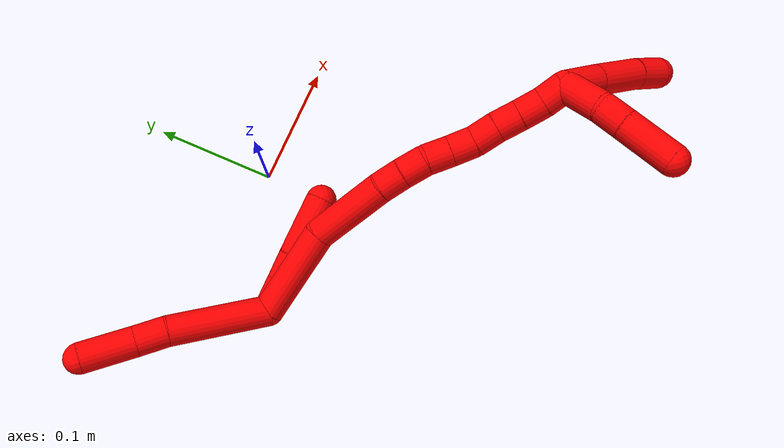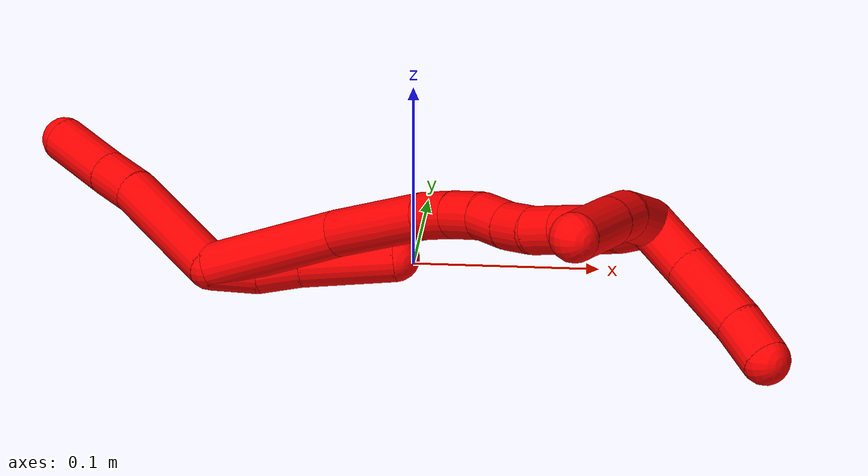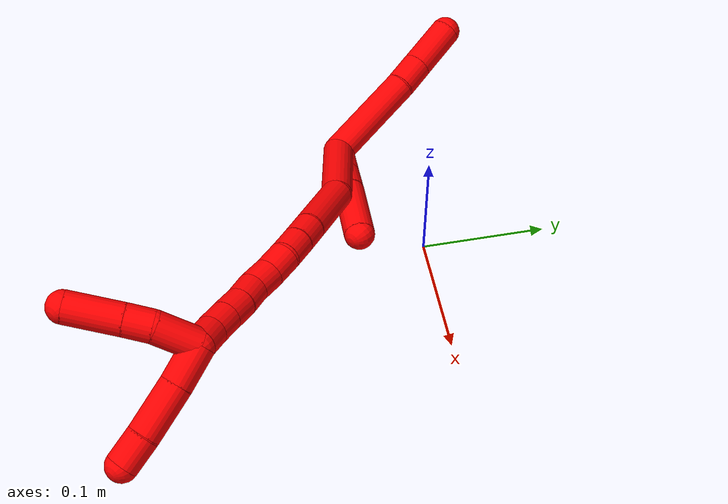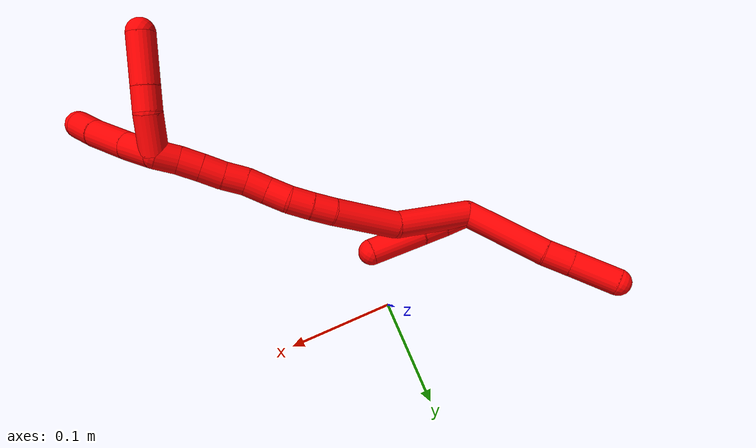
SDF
<sdf version="1.7">
 <world name="default">
  <model name="2">
   <static>0</static>
   <link name="2">
    <collision name="collision-cylinder-e_1_2_8">
     <pose>0.010587 0.007688 -0.03846 -2.9443 0.263651 -1.85923</pose>
     <geometry><cylinder><radius>0.0125</radius><length>0.081249</length></cylinder></geometry>
     <surface>
      <friction><ode><mu>1.16</mu><mu2>1.16</mu2><slip1>0</slip1><slip2>0</slip2></ode></friction>
      <contact><ode><kp>1e+06</kp><kd>1</kd><max_vel>0</max_vel><min_depth>0.001</min_depth></ode></contact>
     </surface>
    </collision>
    <visual name="visual-cylinder-e_1_2_8">
     <pose>0.010587 0.007688 -0.03846 -2.9443 0.263651 -1.85923</pose>
     <geometry><cylinder><radius>0.0125</radius><length>0.081249</length></cylinder></geometry>
     <material><ambient>1 0 0 1</ambient></material>
    </visual>
    <collision name="collision-cylinder-e_2_8_9">
     <pose>0.022845 0.017921 -0.089084 -2.93529 0.133655 -1.14784</pose>
     <geometry><cylinder><radius>0.0125</radius><length>0.025081</length></cylinder></geometry>
     <surface>
      <friction><ode><mu>1.16</mu><mu2>1.16</mu2><slip1>0</slip1><slip2>0</slip2></ode></friction>
      <contact><ode><kp>1e+06</kp><kd>1</kd><max_vel>0</max_vel><min_depth>0.001</min_depth></ode></contact>
     </surface>
    </collision>
    <visual name="visual-cylinder-e_2_8_9">
     <pose>0.022845 0.017921 -0.089084 -2.93529 0.133655 -1.14784</pose>
     <geometry><cylinder><radius>0.0125</radius><length>0.025081</length></cylinder></geometry>
     <material><ambient>1 0 0 1</ambient></material>
    </visual>
    <collision name="collision-cylinder-e_3_9_6">
     <pose>0.028103 0.025139 -0.122275 -2.92297 0.164996 -1.29134</pose>
     <geometry><cylinder><radius>0.0125</radius><length>0.043671</length></cylinder></geometry>
     <surface>
      <friction><ode><mu>1.16</mu><mu2>1.16</mu2><slip1>0</slip1><slip2>0</slip2></ode></friction>
      <contact><ode><kp>1e+06</kp><kd>1</kd><max_vel>0</max_vel><min_depth>0.001</min_depth></ode></contact>
     </surface>
    </collision>
    <visual name="visual-cylinder-e_3_9_6">
     <pose>0.028103 0.025139 -0.122275 -2.92297 0.164996 -1.29134</pose>
     <geometry><cylinder><radius>0.0125</radius><length>0.043671</length></cylinder></geometry>
     <material><ambient>1 0 0 1</ambient></material>
    </visual>
    <collision name="collision-cylinder-e_1_2_10">
     <pose>0.006034 -0.007577 0.008119 0.750843 0.497711 0.199641</pose>
     <geometry><cylinder><radius>0.0125</radius><length>0.025277</length></cylinder></geometry>
     <surface>
      <friction><ode><mu>1.16</mu><mu2>1.16</mu2><slip1>0</slip1><slip2>0</slip2></ode></friction>
      <contact><ode><kp>1e+06</kp><kd>1</kd><max_vel>0</max_vel><min_depth>0.001</min_depth></ode></contact>
     </surface>
    </collision>
    <visual name="visual-cylinder-e_1_2_10">
     <pose>0.006034 -0.007577 0.008119 0.750843 0.497711 0.199641</pose>
     <geometry><cylinder><radius>0.0125</radius><length>0.025277</length></cylinder></geometry>
     <material><ambient>1 0 0 1</ambient></material>
    </visual>
    <collision name="collision-cylinder-e_2_10_11">
     <pose>0.019366 -0.019777 0.024245 0.523733 0.668203 0.185534</pose>
     <geometry><cylinder><radius>0.0125</radius><length>0.023558</length></cylinder></geometry>
     <surface>
      <friction><ode><mu>1.16</mu><mu2>1.16</mu2><slip1>0</slip1><slip2>0</slip2></ode></friction>
      <contact><ode><kp>1e+06</kp><kd>1</kd><max_vel>0</max_vel><min_depth>0.001</min_depth></ode></contact>
     </surface>
    </collision>
    <visual name="visual-cylinder-e_2_10_11">
     <pose>0.019366 -0.019777 0.024245 0.523733 0.668203 0.185534</pose>
     <geometry><cylinder><radius>0.0125</radius><length>0.023558</length></cylinder></geometry>
     <material><ambient>1 0 0 1</ambient></material>
    </visual>
    <collision name="collision-cylinder-e_3_11_5">
     <pose>0.041076 -0.036296 0.049723 0.597735 0.598454 0.18952</pose>
     <geometry><cylinder><radius>0.0125</radius><length>0.051165</length></cylinder></geometry>
     <surface>
      <friction><ode><mu>1.16</mu><mu2>1.16</mu2><slip1>0</slip1><slip2>0</slip2></ode></friction>
      <contact><ode><kp>1e+06</kp><kd>1</kd><max_vel>0</max_vel><min_depth>0.001</min_depth></ode></contact>
     </surface>
    </collision>
    <visual name="visual-cylinder-e_3_11_5">
     <pose>0.041076 -0.036296 0.049723 0.597735 0.598454 0.18952</pose>
     <geometry><cylinder><radius>0.0125</radius><length>0.051165</length></cylinder></geometry>
     <material><ambient>1 0 0 1</ambient></material>
    </visual>
    <collision name="collision-cylinder-e_1_2_12">
     <pose>0.022699 -0.006643 0.029591 0.22083 0.642526 0.073757</pose>
     <geometry><cylinder><radius>0.0125</radius><length>0.075763</length></cylinder></geometry>
     <surface>
      <friction><ode><mu>1.16</mu><mu2>1.16</mu2><slip1>0</slip1><slip2>0</slip2></ode></friction>
      <contact><ode><kp>1e+06</kp><kd>1</kd><max_vel>0</max_vel><min_depth>0.001</min_depth></ode></contact>
     </surface>
    </collision>
    <visual name="visual-cylinder-e_1_2_12">
     <pose>0.022699 -0.006643 0.029591 0.22083 0.642526 0.073757</pose>
     <geometry><cylinder><radius>0.0125</radius><length>0.075763</length></cylinder></geometry>
     <material><ambient>1 0 0 1</ambient></material>
    </visual>
    <collision name="collision-cylinder-e_2_12_13">
     <pose>0.057166 -0.012398 0.087946 -0.030869 0.388169 -0.006068</pose>
     <geometry><cylinder><radius>0.0125</radius><length>0.062181</length></cylinder></geometry>
     <surface>
      <friction><ode><mu>1.16</mu><mu2>1.16</mu2><slip1>0</slip1><slip2>0</slip2></ode></friction>
      <contact><ode><kp>1e+06</kp><kd>1</kd><max_vel>0</max_vel><min_depth>0.001</min_depth></ode></contact>
     </surface>
    </collision>
    <visual name="visual-cylinder-e_2_12_13">
     <pose>0.057166 -0.012398 0.087946 -0.030869 0.388169 -0.006068</pose>
     <geometry><cylinder><radius>0.0125</radius><length>0.062181</length></cylinder></geometry>
     <material><ambient>1 0 0 1</ambient></material>
    </visual>
    <collision name="collision-cylinder-e_3_13_14">
     <pose>0.071771 -0.011723 0.126655 0.021487 0.277791 0.003004</pose>
     <geometry><cylinder><radius>0.0125</radius><length>0.020687</length></cylinder></geometry>
     <surface>
      <friction><ode><mu>1.16</mu><mu2>1.16</mu2><slip1>0</slip1><slip2>0</slip2></ode></friction>
      <contact><ode><kp>1e+06</kp><kd>1</kd><max_vel>0</max_vel><min_depth>0.001</min_depth></ode></contact>
     </surface>
    </collision>
    <visual name="visual-cylinder-e_3_13_14">
     <pose>0.071771 -0.011723 0.126655 0.021487 0.277791 0.003004</pose>
     <geometry><cylinder><radius>0.0125</radius><length>0.020687</length></cylinder></geometry>
     <material><ambient>1 0 0 1</ambient></material>
    </visual>
    <collision name="collision-cylinder-e_4_14_15">
     <pose>0.076787 -0.012287 0.146662 0.034777 0.213181 0.003721</pose>
     <geometry><cylinder><radius>0.0125</radius><length>0.020604</length></cylinder></geometry>
     <surface>
      <friction><ode><mu>1.16</mu><mu2>1.16</mu2><slip1>0</slip1><slip2>0</slip2></ode></friction>
      <contact><ode><kp>1e+06</kp><kd>1</kd><max_vel>0</max_vel><min_depth>0.001</min_depth></ode></contact>
     </surface>
    </collision>
    <visual name="visual-cylinder-e_4_14_15">
     <pose>0.076787 -0.012287 0.146662 0.034777 0.213181 0.003721</pose>
     <geometry><cylinder><radius>0.0125</radius><length>0.020604</length></cylinder></geometry>
     <material><ambient>1 0 0 1</ambient></material>
    </visual>
    <collision name="collision-cylinder-e_5_15_16">
     <pose>0.078818 -0.013623 0.166915 0.096439 -0.014469 -0.000698</pose>
     <geometry><cylinder><radius>0.0125</radius><length>0.020478</length></cylinder></geometry>
     <surface>
      <friction><ode><mu>1.16</mu><mu2>1.16</mu2><slip1>0</slip1><slip2>0</slip2></ode></friction>
      <contact><ode><kp>1e+06</kp><kd>1</kd><max_vel>0</max_vel><min_depth>0.001</min_depth></ode></contact>
     </surface>
    </collision>
    <visual name="visual-cylinder-e_5_15_16">
     <pose>0.078818 -0.013623 0.166915 0.096439 -0.014469 -0.000698</pose>
     <geometry><cylinder><radius>0.0125</radius><length>0.020478</length></cylinder></geometry>
     <material><ambient>1 0 0 1</ambient></material>
    </visual>
    <collision name="collision-cylinder-e_6_16_17">
     <pose>0.079496 -0.014491 0.187124 -0.011788 0.082281 -0.000485</pose>
     <geometry><cylinder><radius>0.0125</radius><length>0.020108</length></cylinder></geometry>
     <surface>
      <friction><ode><mu>1.16</mu><mu2>1.16</mu2><slip1>0</slip1><slip2>0</slip2></ode></friction>
      <contact><ode><kp>1e+06</kp><kd>1</kd><max_vel>0</max_vel><min_depth>0.001</min_depth></ode></contact>
     </surface>
    </collision>
    <visual name="visual-cylinder-e_6_16_17">
     <pose>0.079496 -0.014491 0.187124 -0.011788 0.082281 -0.000485</pose>
     <geometry><cylinder><radius>0.0125</radius><length>0.020108</length></cylinder></geometry>
     <material><ambient>1 0 0 1</ambient></material>
    </visual>
    <collision name="collision-cylinder-e_7_17_18">
     <pose>0.083037 -0.014646 0.206843 0.028199 0.272759 0.00387</pose>
     <geometry><cylinder><radius>0.0125</radius><length>0.020151</length></cylinder></geometry>
     <surface>
      <friction><ode><mu>1.16</mu><mu2>1.16</mu2><slip1>0</slip1><slip2>0</slip2></ode></friction>
      <contact><ode><kp>1e+06</kp><kd>1</kd><max_vel>0</max_vel><min_depth>0.001</min_depth></ode></contact>
     </surface>
    </collision>
    <visual name="visual-cylinder-e_7_17_18">
     <pose>0.083037 -0.014646 0.206843 0.028199 0.272759 0.00387</pose>
     <geometry><cylinder><radius>0.0125</radius><length>0.020151</length></cylinder></geometry>
     <material><ambient>1 0 0 1</ambient></material>
    </visual>
    <collision name="collision-cylinder-e_8_18_19">
     <pose>0.087847 -0.014434 0.226313 -0.04969 0.211071 -0.005265</pose>
     <geometry><cylinder><radius>0.0125</radius><length>0.02001</length></cylinder></geometry>
     <surface>
      <friction><ode><mu>1.16</mu><mu2>1.16</mu2><slip1>0</slip1><slip2>0</slip2></ode></friction>
      <contact><ode><kp>1e+06</kp><kd>1</kd><max_vel>0</max_vel><min_depth>0.001</min_depth></ode></contact>
     </surface>
    </collision>
    <visual name="visual-cylinder-e_8_18_19">
     <pose>0.087847 -0.014434 0.226313 -0.04969 0.211071 -0.005265</pose>
     <geometry><cylinder><radius>0.0125</radius><length>0.02001</length></cylinder></geometry>
     <material><ambient>1 0 0 1</ambient></material>
    </visual>
    <collision name="collision-cylinder-e_9_19_20">
     <pose>0.092192 -0.013705 0.24583 -0.024869 0.226704 -0.002831</pose>
     <geometry><cylinder><radius>0.0125</radius><length>0.02001</length></cylinder></geometry>
     <surface>
      <friction><ode><mu>1.16</mu><mu2>1.16</mu2><slip1>0</slip1><slip2>0</slip2></ode></friction>
      <contact><ode><kp>1e+06</kp><kd>1</kd><max_vel>0</max_vel><min_depth>0.001</min_depth></ode></contact>
     </surface>
    </collision>
    <visual name="visual-cylinder-e_9_19_20">
     <pose>0.092192 -0.013705 0.24583 -0.024869 0.226704 -0.002831</pose>
     <geometry><cylinder><radius>0.0125</radius><length>0.02001</length></cylinder></geometry>
     <material><ambient>1 0 0 1</ambient></material>
    </visual>
    <collision name="collision-cylinder-e_10_20_1">
     <pose>0.098158 -0.013032 0.264854 -0.046427 0.380673 -0.008947</pose>
     <geometry><cylinder><radius>0.0125</radius><length>0.020007</length></cylinder></geometry>
     <surface>
      <friction><ode><mu>1.16</mu><mu2>1.16</mu2><slip1>0</slip1><slip2>0</slip2></ode></friction>
      <contact><ode><kp>1e+06</kp><kd>1</kd><max_vel>0</max_vel><min_depth>0.001</min_depth></ode></contact>
     </surface>
    </collision>
    <visual name="visual-cylinder-e_10_20_1">
     <pose>0.098158 -0.013032 0.264854 -0.046427 0.380673 -0.008947</pose>
     <geometry><cylinder><radius>0.0125</radius><length>0.020007</length></cylinder></geometry>
     <material><ambient>1 0 0 1</ambient></material>
    </visual>
    <collision name="collision-cylinder-e_1_1_21">
     <pose>0.096033 0.00164 0.282558 -1.03647 -0.339381 0.194783</pose>
     <geometry><cylinder><radius>0.0125</radius><length>0.035095</length></cylinder></geometry>
     <surface>
      <friction><ode><mu>1.16</mu><mu2>1.16</mu2><slip1>0</slip1><slip2>0</slip2></ode></friction>
      <contact><ode><kp>1e+06</kp><kd>1</kd><max_vel>0</max_vel><min_depth>0.001</min_depth></ode></contact>
     </surface>
    </collision>
    <visual name="visual-cylinder-e_1_1_21">
     <pose>0.096033 0.00164 0.282558 -1.03647 -0.339381 0.194783</pose>
     <geometry><cylinder><radius>0.0125</radius><length>0.035095</length></cylinder></geometry>
     <material><ambient>1 0 0 1</ambient></material>
    </visual>
    <collision name="collision-cylinder-e_2_21_22">
     <pose>0.084405 0.023084 0.296322 -0.933131 -0.573142 0.294684</pose>
     <geometry><cylinder><radius>0.0125</radius><length>0.021342</length></cylinder></geometry>
     <surface>
      <friction><ode><mu>1.16</mu><mu2>1.16</mu2><slip1>0</slip1><slip2>0</slip2></ode></friction>
      <contact><ode><kp>1e+06</kp><kd>1</kd><max_vel>0</max_vel><min_depth>0.001</min_depth></ode></contact>
     </surface>
    </collision>
    <visual name="visual-cylinder-e_2_21_22">
     <pose>0.084405 0.023084 0.296322 -0.933131 -0.573142 0.294684</pose>
     <geometry><cylinder><radius>0.0125</radius><length>0.021342</length></cylinder></geometry>
     <material><ambient>1 0 0 1</ambient></material>
    </visual>
    <collision name="collision-cylinder-e_3_22_4">
     <pose>0.066343 0.044552 0.312627 -0.915335 -0.598686 0.301707</pose>
     <geometry><cylinder><radius>0.0125</radius><length>0.043562</length></cylinder></geometry>
     <surface>
      <friction><ode><mu>1.16</mu><mu2>1.16</mu2><slip1>0</slip1><slip2>0</slip2></ode></friction>
      <contact><ode><kp>1e+06</kp><kd>1</kd><max_vel>0</max_vel><min_depth>0.001</min_depth></ode></contact>
     </surface>
    </collision>
    <visual name="visual-cylinder-e_3_22_4">
     <pose>0.066343 0.044552 0.312627 -0.915335 -0.598686 0.301707</pose>
     <geometry><cylinder><radius>0.0125</radius><length>0.043562</length></cylinder></geometry>
     <material><ambient>1 0 0 1</ambient></material>
    </visual>
    <collision name="collision-cylinder-e_1_1_23">
     <pose>0.096682 -0.019906 0.287706 0.493668 -0.324935 -0.082556</pose>
     <geometry><cylinder><radius>0.0125</radius><length>0.032534</length></cylinder></geometry>
     <surface>
      <friction><ode><mu>1.16</mu><mu2>1.16</mu2><slip1>0</slip1><slip2>0</slip2></ode></friction>
      <contact><ode><kp>1e+06</kp><kd>1</kd><max_vel>0</max_vel><min_depth>0.001</min_depth></ode></contact>
     </surface>
    </collision>
    <visual name="visual-cylinder-e_1_1_23">
     <pose>0.096682 -0.019906 0.287706 0.493668 -0.324935 -0.082556</pose>
     <geometry><cylinder><radius>0.0125</radius><length>0.032534</length></cylinder></geometry>
     <material><ambient>1 0 0 1</ambient></material>
    </visual>
    <collision name="collision-cylinder-e_2_23_24">
     <pose>0.084579 -0.035596 0.319214 0.437413 -0.335812 -0.075312</pose>
     <geometry><cylinder><radius>0.0125</radius><length>0.041936</length></cylinder></geometry>
     <surface>
      <friction><ode><mu>1.16</mu><mu2>1.16</mu2><slip1>0</slip1><slip2>0</slip2></ode></friction>
      <contact><ode><kp>1e+06</kp><kd>1</kd><max_vel>0</max_vel><min_depth>0.001</min_depth></ode></contact>
     </surface>
    </collision>
    <visual name="visual-cylinder-e_2_23_24">
     <pose>0.084579 -0.035596 0.319214 0.437413 -0.335812 -0.075312</pose>
     <geometry><cylinder><radius>0.0125</radius><length>0.041936</length></cylinder></geometry>
     <material><ambient>1 0 0 1</ambient></material>
    </visual>
    <collision name="collision-cylinder-e_3_24_3">
     <pose>0.072459 -0.048791 0.347762 0.425359 -0.42044 -0.092088</pose>
     <geometry><cylinder><radius>0.0125</radius><length>0.02553</length></cylinder></geometry>
     <surface>
      <friction><ode><mu>1.16</mu><mu2>1.16</mu2><slip1>0</slip1><slip2>0</slip2></ode></friction>
      <contact><ode><kp>1e+06</kp><kd>1</kd><max_vel>0</max_vel><min_depth>0.001</min_depth></ode></contact>
     </surface>
    </collision>
    <visual name="visual-cylinder-e_3_24_3">
     <pose>0.072459 -0.048791 0.347762 0.425359 -0.42044 -0.092088</pose>
     <geometry><cylinder><radius>0.0125</radius><length>0.02553</length></cylinder></geometry>
     <material><ambient>1 0 0 1</ambient></material>
    </visual>
    <collision name="collision-sphere-3">
     <pose>0.067248 -0.0536 0.358377 0 -0 0</pose>
     <geometry><sphere><radius>0.0125</radius></sphere></geometry>
     <surface>
      <friction><ode><mu>1.16</mu><mu2>1.16</mu2><slip1>0</slip1><slip2>0</slip2></ode></friction>
      <contact><ode><kp>1e+06</kp><kd>1</kd><max_vel>0</max_vel><min_depth>0.001</min_depth></ode></contact>
     </surface>
    </collision>
    <visual name="visual-sphere-3">
     <pose>0.067248 -0.0536 0.358377 0 -0 0</pose>
     <geometry><sphere><radius>0.0125</radius></sphere></geometry>
     <material><ambient>1 0 0 1</ambient></material>
    </visual>
    <collision name="collision-sphere-24">
     <pose>0.077669 -0.043982 0.337147 0 -0 0</pose>
     <geometry><sphere><radius>0.0125</radius></sphere></geometry>
     <surface>
      <friction><ode><mu>1.16</mu><mu2>1.16</mu2><slip1>0</slip1><slip2>0</slip2></ode></friction>
      <contact><ode><kp>1e+06</kp><kd>1</kd><max_vel>0</max_vel><min_depth>0.001</min_depth></ode></contact>
     </surface>
    </collision>
    <visual name="visual-sphere-24">
     <pose>0.077669 -0.043982 0.337147 0 -0 0</pose>
     <geometry><sphere><radius>0.0125</radius></sphere></geometry>
     <material><ambient>1 0 0 1</ambient></material>
    </visual>
    <collision name="collision-sphere-23">
     <pose>0.091488 -0.02721 0.301281 0 -0 0</pose>
     <geometry><sphere><radius>0.0125</radius></sphere></geometry>
     <surface>
      <friction><ode><mu>1.16</mu><mu2>1.16</mu2><slip1>0</slip1><slip2>0</slip2></ode></friction>
      <contact><ode><kp>1e+06</kp><kd>1</kd><max_vel>0</max_vel><min_depth>0.001</min_depth></ode></contact>
     </surface>
    </collision>
    <visual name="visual-sphere-23">
     <pose>0.091488 -0.02721 0.301281 0 -0 0</pose>
     <geometry><sphere><radius>0.0125</radius></sphere></geometry>
     <material><ambient>1 0 0 1</ambient></material>
    </visual>
    <collision name="collision-sphere-4">
     <pose>0.054068 0.058816 0.323594 0 -0 0</pose>
     <geometry><sphere><radius>0.0125</radius></sphere></geometry>
     <surface>
      <friction><ode><mu>1.16</mu><mu2>1.16</mu2><slip1>0</slip1><slip2>0</slip2></ode></friction>
      <contact><ode><kp>1e+06</kp><kd>1</kd><max_vel>0</max_vel><min_depth>0.001</min_depth></ode></contact>
     </surface>
    </collision>
    <visual name="visual-sphere-4">
     <pose>0.054068 0.058816 0.323594 0 -0 0</pose>
     <geometry><sphere><radius>0.0125</radius></sphere></geometry>
     <material><ambient>1 0 0 1</ambient></material>
    </visual>
    <collision name="collision-sphere-22">
     <pose>0.078618 0.030288 0.30166 0 -0 0</pose>
     <geometry><sphere><radius>0.0125</radius></sphere></geometry>
     <surface>
      <friction><ode><mu>1.16</mu><mu2>1.16</mu2><slip1>0</slip1><slip2>0</slip2></ode></friction>
      <contact><ode><kp>1e+06</kp><kd>1</kd><max_vel>0</max_vel><min_depth>0.001</min_depth></ode></contact>
     </surface>
    </collision>
    <visual name="visual-sphere-22">
     <pose>0.078618 0.030288 0.30166 0 -0 0</pose>
     <geometry><sphere><radius>0.0125</radius></sphere></geometry>
     <material><ambient>1 0 0 1</ambient></material>
    </visual>
    <collision name="collision-sphere-21">
     <pose>0.090191 0.01588 0.290984 0 -0 0</pose>
     <geometry><sphere><radius>0.0125</radius></sphere></geometry>
     <surface>
      <friction><ode><mu>1.16</mu><mu2>1.16</mu2><slip1>0</slip1><slip2>0</slip2></ode></friction>
      <contact><ode><kp>1e+06</kp><kd>1</kd><max_vel>0</max_vel><min_depth>0.001</min_depth></ode></contact>
     </surface>
    </collision>
    <visual name="visual-sphere-21">
     <pose>0.090191 0.01588 0.290984 0 -0 0</pose>
     <geometry><sphere><radius>0.0125</radius></sphere></geometry>
     <material><ambient>1 0 0 1</ambient></material>
    </visual>
    <collision name="collision-sphere-1">
     <pose>0.101875 -0.012601 0.274131 0 -0 0</pose>
     <geometry><sphere><radius>0.0125</radius></sphere></geometry>
     <surface>
      <friction><ode><mu>1.16</mu><mu2>1.16</mu2><slip1>0</slip1><slip2>0</slip2></ode></friction>
      <contact><ode><kp>1e+06</kp><kd>1</kd><max_vel>0</max_vel><min_depth>0.001</min_depth></ode></contact>
     </surface>
    </collision>
    <visual name="visual-sphere-1">
     <pose>0.101875 -0.012601 0.274131 0 -0 0</pose>
     <geometry><sphere><radius>0.0125</radius></sphere></geometry>
     <material><ambient>1 0 0 1</ambient></material>
    </visual>
    <collision name="collision-sphere-11">
     <pose>0.026664 -0.024401 0.032251 0 -0 0</pose>
     <geometry><sphere><radius>0.0125</radius></sphere></geometry>
     <surface>
      <friction><ode><mu>1.16</mu><mu2>1.16</mu2><slip1>0</slip1><slip2>0</slip2></ode></friction>
      <contact><ode><kp>1e+06</kp><kd>1</kd><max_vel>0</max_vel><min_depth>0.001</min_depth></ode></contact>
     </surface>
    </collision>
    <visual name="visual-sphere-11">
     <pose>0.026664 -0.024401 0.032251 0 -0 0</pose>
     <geometry><sphere><radius>0.0125</radius></sphere></geometry>
     <material><ambient>1 0 0 1</ambient></material>
    </visual>
    <collision name="collision-sphere-10">
     <pose>0.012068 -0.015153 0.016238 0 -0 0</pose>
     <geometry><sphere><radius>0.0125</radius></sphere></geometry>
     <surface>
      <friction><ode><mu>1.16</mu><mu2>1.16</mu2><slip1>0</slip1><slip2>0</slip2></ode></friction>
      <contact><ode><kp>1e+06</kp><kd>1</kd><max_vel>0</max_vel><min_depth>0.001</min_depth></ode></contact>
     </surface>
    </collision>
    <visual name="visual-sphere-10">
     <pose>0.012068 -0.015153 0.016238 0 -0 0</pose>
     <geometry><sphere><radius>0.0125</radius></sphere></geometry>
     <material><ambient>1 0 0 1</ambient></material>
    </visual>
    <collision name="collision-sphere-6">
     <pose>0.031689 0.02981 -0.143302 0 -0 0</pose>
     <geometry><sphere><radius>0.0125</radius></sphere></geometry>
     <surface>
      <friction><ode><mu>1.16</mu><mu2>1.16</mu2><slip1>0</slip1><slip2>0</slip2></ode></friction>
      <contact><ode><kp>1e+06</kp><kd>1</kd><max_vel>0</max_vel><min_depth>0.001</min_depth></ode></contact>
     </surface>
    </collision>
    <visual name="visual-sphere-6">
     <pose>0.031689 0.02981 -0.143302 0 -0 0</pose>
     <geometry><sphere><radius>0.0125</radius></sphere></geometry>
     <material><ambient>1 0 0 1</ambient></material>
    </visual>
    <collision name="collision-sphere-9">
     <pose>0.024516 0.020467 -0.101249 0 -0 0</pose>
     <geometry><sphere><radius>0.0125</radius></sphere></geometry>
     <surface>
      <friction><ode><mu>1.16</mu><mu2>1.16</mu2><slip1>0</slip1><slip2>0</slip2></ode></friction>
      <contact><ode><kp>1e+06</kp><kd>1</kd><max_vel>0</max_vel><min_depth>0.001</min_depth></ode></contact>
     </surface>
    </collision>
    <visual name="visual-sphere-9">
     <pose>0.024516 0.020467 -0.101249 0 -0 0</pose>
     <geometry><sphere><radius>0.0125</radius></sphere></geometry>
     <material><ambient>1 0 0 1</ambient></material>
    </visual>
    <collision name="collision-sphere-2">
     <geometry><sphere><radius>0.0125</radius></sphere></geometry>
     <surface>
      <friction><ode><mu>1.16</mu><mu2>1.16</mu2><slip1>0</slip1><slip2>0</slip2></ode></friction>
      <contact><ode><kp>1e+06</kp><kd>1</kd><max_vel>0</max_vel><min_depth>0.001</min_depth></ode></contact>
     </surface>
    </collision>
    <visual name="visual-sphere-2">
     <geometry><sphere><radius>0.0125</radius></sphere></geometry>
     <material><ambient>1 0 0 1</ambient></material>
    </visual>
    <collision name="collision-sphere-19">
     <pose>0.089943 -0.013948 0.236084 0 -0 0</pose>
     <geometry><sphere><radius>0.0125</radius></sphere></geometry>
     <surface>
      <friction><ode><mu>1.16</mu><mu2>1.16</mu2><slip1>0</slip1><slip2>0</slip2></ode></friction>
      <contact><ode><kp>1e+06</kp><kd>1</kd><max_vel>0</max_vel><min_depth>0.001</min_depth></ode></contact>
     </surface>
    </collision>
    <visual name="visual-sphere-19">
     <pose>0.089943 -0.013948 0.236084 0 -0 0</pose>
     <geometry><sphere><radius>0.0125</radius></sphere></geometry>
     <material><ambient>1 0 0 1</ambient></material>
    </visual>
    <collision name="collision-sphere-8">
     <pose>0.021174 0.015375 -0.076919 0 -0 0</pose>
     <geometry><sphere><radius>0.0125</radius></sphere></geometry>
     <surface>
      <friction><ode><mu>1.16</mu><mu2>1.16</mu2><slip1>0</slip1><slip2>0</slip2></ode></friction>
      <contact><ode><kp>1e+06</kp><kd>1</kd><max_vel>0</max_vel><min_depth>0.001</min_depth></ode></contact>
     </surface>
    </collision>
    <visual name="visual-sphere-8">
     <pose>0.021174 0.015375 -0.076919 0 -0 0</pose>
     <geometry><sphere><radius>0.0125</radius></sphere></geometry>
     <material><ambient>1 0 0 1</ambient></material>
    </visual>
    <collision name="collision-sphere-5">
     <pose>0.055488 -0.048191 0.067194 0 -0 0</pose>
     <geometry><sphere><radius>0.0125</radius></sphere></geometry>
     <surface>
      <friction><ode><mu>1.16</mu><mu2>1.16</mu2><slip1>0</slip1><slip2>0</slip2></ode></friction>
      <contact><ode><kp>1e+06</kp><kd>1</kd><max_vel>0</max_vel><min_depth>0.001</min_depth></ode></contact>
     </surface>
    </collision>
    <visual name="visual-sphere-5">
     <pose>0.055488 -0.048191 0.067194 0 -0 0</pose>
     <geometry><sphere><radius>0.0125</radius></sphere></geometry>
     <material><ambient>1 0 0 1</ambient></material>
    </visual>
    <collision name="collision-sphere-12">
     <pose>0.045399 -0.013286 0.059182 0 -0 0</pose>
     <geometry><sphere><radius>0.0125</radius></sphere></geometry>
     <surface>
      <friction><ode><mu>1.16</mu><mu2>1.16</mu2><slip1>0</slip1><slip2>0</slip2></ode></friction>
      <contact><ode><kp>1e+06</kp><kd>1</kd><max_vel>0</max_vel><min_depth>0.001</min_depth></ode></contact>
     </surface>
    </collision>
    <visual name="visual-sphere-12">
     <pose>0.045399 -0.013286 0.059182 0 -0 0</pose>
     <geometry><sphere><radius>0.0125</radius></sphere></geometry>
     <material><ambient>1 0 0 1</ambient></material>
    </visual>
    <collision name="collision-sphere-13">
     <pose>0.068934 -0.011509 0.11671 0 -0 0</pose>
     <geometry><sphere><radius>0.0125</radius></sphere></geometry>
     <surface>
      <friction><ode><mu>1.16</mu><mu2>1.16</mu2><slip1>0</slip1><slip2>0</slip2></ode></friction>
      <contact><ode><kp>1e+06</kp><kd>1</kd><max_vel>0</max_vel><min_depth>0.001</min_depth></ode></contact>
     </surface>
    </collision>
    <visual name="visual-sphere-13">
     <pose>0.068934 -0.011509 0.11671 0 -0 0</pose>
     <geometry><sphere><radius>0.0125</radius></sphere></geometry>
     <material><ambient>1 0 0 1</ambient></material>
    </visual>
    <collision name="collision-sphere-14">
     <pose>0.074607 -0.011937 0.136599 0 -0 0</pose>
     <geometry><sphere><radius>0.0125</radius></sphere></geometry>
     <surface>
      <friction><ode><mu>1.16</mu><mu2>1.16</mu2><slip1>0</slip1><slip2>0</slip2></ode></friction>
      <contact><ode><kp>1e+06</kp><kd>1</kd><max_vel>0</max_vel><min_depth>0.001</min_depth></ode></contact>
     </surface>
    </collision>
    <visual name="visual-sphere-14">
     <pose>0.074607 -0.011937 0.136599 0 -0 0</pose>
     <geometry><sphere><radius>0.0125</radius></sphere></geometry>
     <material><ambient>1 0 0 1</ambient></material>
    </visual>
    <collision name="collision-sphere-15">
     <pose>0.078966 -0.012637 0.156724 0 -0 0</pose>
     <geometry><sphere><radius>0.0125</radius></sphere></geometry>
     <surface>
      <friction><ode><mu>1.16</mu><mu2>1.16</mu2><slip1>0</slip1><slip2>0</slip2></ode></friction>
      <contact><ode><kp>1e+06</kp><kd>1</kd><max_vel>0</max_vel><min_depth>0.001</min_depth></ode></contact>
     </surface>
    </collision>
    <visual name="visual-sphere-15">
     <pose>0.078966 -0.012637 0.156724 0 -0 0</pose>
     <geometry><sphere><radius>0.0125</radius></sphere></geometry>
     <material><ambient>1 0 0 1</ambient></material>
    </visual>
    <collision name="collision-sphere-16">
     <pose>0.07867 -0.014609 0.177105 0 -0 0</pose>
     <geometry><sphere><radius>0.0125</radius></sphere></geometry>
     <surface>
      <friction><ode><mu>1.16</mu><mu2>1.16</mu2><slip1>0</slip1><slip2>0</slip2></ode></friction>
      <contact><ode><kp>1e+06</kp><kd>1</kd><max_vel>0</max_vel><min_depth>0.001</min_depth></ode></contact>
     </surface>
    </collision>
    <visual name="visual-sphere-16">
     <pose>0.07867 -0.014609 0.177105 0 -0 0</pose>
     <geometry><sphere><radius>0.0125</radius></sphere></geometry>
     <material><ambient>1 0 0 1</ambient></material>
    </visual>
    <collision name="collision-sphere-17">
     <pose>0.080323 -0.014372 0.197143 0 -0 0</pose>
     <geometry><sphere><radius>0.0125</radius></sphere></geometry>
     <surface>
      <friction><ode><mu>1.16</mu><mu2>1.16</mu2><slip1>0</slip1><slip2>0</slip2></ode></friction>
      <contact><ode><kp>1e+06</kp><kd>1</kd><max_vel>0</max_vel><min_depth>0.001</min_depth></ode></contact>
     </surface>
    </collision>
    <visual name="visual-sphere-17">
     <pose>0.080323 -0.014372 0.197143 0 -0 0</pose>
     <geometry><sphere><radius>0.0125</radius></sphere></geometry>
     <material><ambient>1 0 0 1</ambient></material>
    </visual>
    <collision name="collision-sphere-18">
     <pose>0.085751 -0.01492 0.216542 0 -0 0</pose>
     <geometry><sphere><radius>0.0125</radius></sphere></geometry>
     <surface>
      <friction><ode><mu>1.16</mu><mu2>1.16</mu2><slip1>0</slip1><slip2>0</slip2></ode></friction>
      <contact><ode><kp>1e+06</kp><kd>1</kd><max_vel>0</max_vel><min_depth>0.001</min_depth></ode></contact>
     </surface>
    </collision>
    <visual name="visual-sphere-18">
     <pose>0.085751 -0.01492 0.216542 0 -0 0</pose>
     <geometry><sphere><radius>0.0125</radius></sphere></geometry>
     <material><ambient>1 0 0 1</ambient></material>
    </visual>
    <collision name="collision-sphere-20">
     <pose>0.094441 -0.013463 0.255576 0 -0 0</pose>
     <geometry><sphere><radius>0.0125</radius></sphere></geometry>
     <surface>
      <friction><ode><mu>1.16</mu><mu2>1.16</mu2><slip1>0</slip1><slip2>0</slip2></ode></friction>
      <contact><ode><kp>1e+06</kp><kd>1</kd><max_vel>0</max_vel><min_depth>0.001</min_depth></ode></contact>
     </surface>
    </collision>
    <visual name="visual-sphere-20">
     <pose>0.094441 -0.013463 0.255576 0 -0 0</pose>
     <geometry><sphere><radius>0.0125</radius></sphere></geometry>
     <material><ambient>1 0 0 1</ambient></material>
    </visual>
    <inertial>
     <pose>0.054358 -0.006262 0.124739 0 -0 0</pose>
     <mass>0.75</mass>
     <inertia><ixx>5.5e-05</ixx><ixy>0</ixy><ixz>0</ixz><iyy>7.6e-05</iyy><iyz>0</iyz><izz>-2.2e-05</izz></inertia>
    </inertial>
   </link>
   <pose>-0.103807 -0.050296 0.013656 1.4368 -0.741653 0.806373</pose>
  </model>
 </world>
</sdf>
